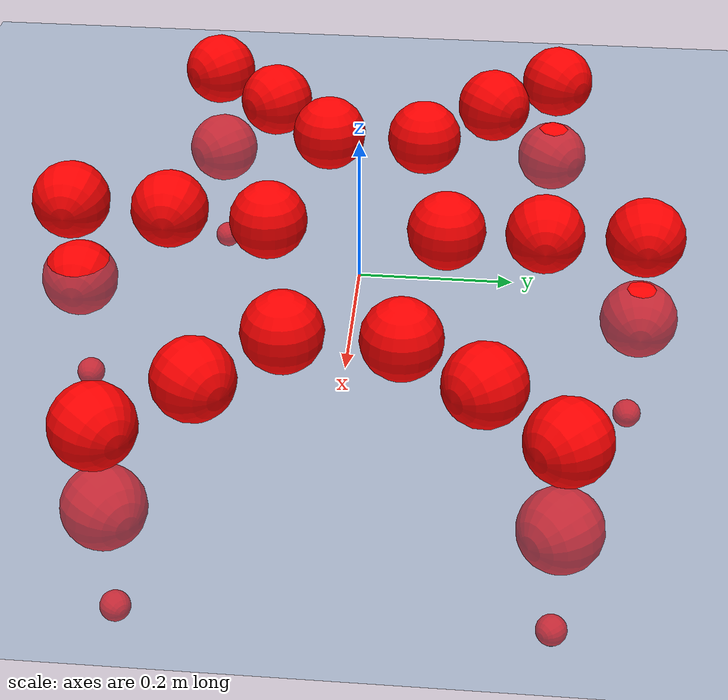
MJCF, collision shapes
<mujoco model="Golem">
  <compiler angle="radian" assetdir="assets" balanceinertia="true" inertiafromgeom="false"/>

  <option timestep="0.005" density="1.2" viscosity="2e-05"/>

  <size nkey="1"/>

  <visual>
    <quality shadowsize="8192"/>
    <map shadowclip="0.5"/>
  </visual>

  <default>
    <default class="/">
      <joint armature="0.01" damping="0.01" frictionloss="0.01"/>
      <geom contype="0" conaffinity="0" group="1" solref="-1000 -80"/>
      <site size="0.01 0.005 0.005" group="5"/>
      <general forcelimited="true" biastype="affine" gainprm="25" biasprm="0 -25 -0.5"/>
      <default class="visual">
        <geom type="mesh" group="2"/>
      </default>
      <default class="collision">
        <geom group="3"/>
      </default>
      <default class="foot">
        <geom size="0.01 0 0" condim="6" group="4" priority="1" solimp="0.015 1 0.01"/>
      </default>
      <default class="reward_collision_sphere">
        <geom group="5" rgba="1 0 0 1"/>
      </default>
    </default>
  </default>

  <asset>
    <texture type="skybox" colorspace="auto" name="//unnamed_texture_0" builtin="gradient" rgb1="0.95 0.95 0.95" rgb2="0.95 0.95 0.95" width="100" height="600"/>
    <texture type="2d" colorspace="auto" name="texplane" builtin="checker" rgb1="0.345 0.575 0.748" rgb2="0.345 0.575 0.748" markrgb="1 1 1" width="512" height="512"/>
    <material name="MatPlane" class="/" texture="texplane" texuniform="true" texrepeat="2 2" specular="0.9"/>
    <mesh name="body" class="/" file="body.stl" scale="0.001 0.001 0.001"/>
    <mesh name="coxa" class="/" file="coxa.stl" scale="0.001 0.001 0.001"/>
    <mesh name="femur" class="/" file="femur.stl" scale="0.001 0.001 0.001"/>
    <mesh name="tibia" class="/" file="tibia.stl" scale="0.001 0.001 0.001"/>
    <mesh name="tarsus" class="/" file="tarsus.stl" scale="0.001 0.001 0.001"/>
  </asset>

  <worldbody>
    <geom name="floor" class="/" size="100 100 0.125" type="plane" group="0" material="MatPlane"/>
    <light name="toplight_shadow" class="/" pos="0 0 5" dir="0.0990148 0.0990148 -0.990148" type="directional" ambient="0.04 0.04 0.04" diffuse="0.55 0.55 0.55" specular="0.12 0.12 0.12"/>
    <light name="toplight_fill" class="/" pos="0 0 5" dir="0.0990148 0.0990148 -0.990148" type="directional" castshadow="false" ambient="0.04 0.04 0.04" diffuse="0.3 0.3 0.3" specular="0.08 0.08 0.08"/>
    <body name="trunk" pos="0.00183259 0.0011248 0.00219629" quat="1 -5.68526e-05 1.41754e-05 -0.000170579">
      <inertial pos="-0.00162496 0.00223514 0.00621837" quat="0.999979 -0.00337727 -0.00315337 0.00460991" mass="7.36659" diaginertia="0.0742173 0.0249816 0.0178014"/>
      <joint name="//unnamed_joint_0" type="free"/>
      <geom name="//unnamed_geom_1" class="/" pos="0 0 0.0723704" quat="1 0 0 0" type="mesh" rgba="0.9 0.9 0.9 1" mesh="body"/>
      <site name="imu" class="/" pos="0.173505 -0.00904081 0.112645" size="0.0127138"/>
      <camera name="track" class="/" pos="0 -2.39053 0" quat="0.707107 0.707107 0 0" mode="trackcom"/>
      <camera name="ego_camera" class="/" pos="0.19345 0 0.113079" quat="-0.5 -0.5 0.5 0.5"/>
      <body name="coxa_RR" pos="-0.264931 -0.0952122 0.0773541" quat="0.383047 7.08764e-05 -0.000366512 -0.923729">
        <inertial pos="0.000161171 0.00218732 0.00114104" quat="1 0.000293037 9.29614e-05 2.3686e-05" mass="0.420265" diaginertia="0.0760952 0.0255288 0.0207103"/>
        <joint name="coxa_joint_RR" class="/" pos="0 0 0" axis="0.00341389 0.0101735 -0.999942" stiffness="0.0104363" range="-3.15304 3.12922" armature="0.0113025" damping="0.0148955" frictionloss="0.0114323"/>
        <geom name="//unnamed_geom_2" class="/" type="mesh" rgba="0.2 0.2 0.2 1" mesh="coxa"/>
        <geom name="//unnamed_geom_3" class="reward_collision_sphere" size="0.0508551" pos="-0.0446424 0 0"/>
        <body name="femur_RR" pos="0.0849659 -0.00724168 -0.0037015" quat="0.499733 -0.500556 0.499883 0.499828">
          <inertial pos="0.00655634 -0.000634738 0.00767979" quat="0.999404 0.00348712 0.0286567 0.0189316" mass="0.429375" diaginertia="0.0755326 0.025064 0.0188072"/>
          <joint name="femur_joint_RR" class="/" pos="0 0 0" axis="0.000106818 0.00060353 -1" range="-3.17338 3.1533" armature="0.0114583" damping="0.0143022" frictionloss="0.0122645"/>
          <geom name="//unnamed_geom_4" class="/" type="mesh" rgba="0.9 0.9 0.9 1" mesh="femur"/>
          <geom name="//unnamed_geom_5" class="reward_collision_sphere" size="0.0508551"/>
          <body name="tibia_RR" pos="-0.000976402 -0.127764 0.00669839" quat="0.000884963 0.999999 -0.000605265 0.000629879">
            <inertial pos="0.000213027 -0.000795835 0.00448611" quat="0.999986 0.00507898 0.000925475 0.00123522" mass="0.371102" diaginertia="0.0636892 0.021137 0.0164732"/>
            <joint name="tibia_joint_RR" class="/" pos="0 0 0" axis="0.0175265 -0.00527625 0.999832" stiffness="0.00877643" range="-3.11507 3.14674" armature="0.0125916" damping="0" frictionloss="0.0147562"/>
            <geom name="//unnamed_geom_6" class="/" type="mesh" rgba="0.2 0.2 0.2 1" mesh="tibia"/>
            <geom name="//unnamed_geom_7" class="reward_collision_sphere" size="0.0508551"/>
            <body name="tarsus_RR" pos="0.134587 -0.000253603 -0.00110631" quat="1 -0.000138899 -0.000106439 0.000157713">
              <inertial pos="0.0900022 0.000675692 0.000951715" quat="0.492507 0.508529 0.475893 0.521882" mass="0.378057" diaginertia="0.07481 0.0252684 0.0177714"/>
              <joint name="tarsus_joint_RR" class="/" pos="0 0 0" axis="-0.0029484 -0.0361741 0.999341" stiffness="0.00227881" range="-3.17307 3.17323" armature="0.0123935" damping="0.0386542" frictionloss="0.0137832"/>
              <geom name="//unnamed_geom_8" class="/" type="mesh" rgba="0.9 0.9 0.9 1" mesh="tarsus"/>
              <geom name="foot_1" class="foot" size="0.0123464" pos="0.166665 0 0" quat="0 -0.707107 0 0.707107"/>
              <geom name="//unnamed_geom_10" class="reward_collision_sphere" size="0.0508551"/>
              <geom name="//unnamed_geom_11" class="reward_collision_sphere" size="0.0190707" pos="0.159968 0 0"/>
              <site name="foot_1" class="foot" pos="0.166665 0 0" quat="0 -0.707107 0 0.707107" size="0.0127138"/>
            </body>
          </body>
        </body>
      </body>
      <body name="coxa_RM" pos="-0.0025914 -0.164187 0.0771028" quat="0.705217 -0.000395265 0.00239242 -0.708987">
        <inertial pos="0.00379948 0.00065574 0.00548014" quat="0.999894 0.0037109 -0.00273478 0.0138155" mass="0.40909" diaginertia="0.0804295 0.0245171 0.0181825"/>
        <joint name="coxa_joint_RM" class="/" pos="0 0 0" axis="0.00791493 0.00444814 -0.999959" range="-3.18198 3.09518" armature="0.0141677" damping="0.00855553" frictionloss="0.0124847"/>
        <geom name="//unnamed_geom_12" class="/" type="mesh" rgba="0.2 0.2 0.2 1" mesh="coxa"/>
        <geom name="//unnamed_geom_13" class="reward_collision_sphere" size="0.0508551" pos="-0.0446424 0 0"/>
        <body name="femur_RM" pos="0.0844422 -0.00258812 0.00816523" quat="0.500391 -0.500856 0.499278 0.499473">
          <inertial pos="-0.00582242 -0.000356149 -0.000133806" quat="0.999475 -0.0272019 -0.00979512 -0.0146509" mass="0.400152" diaginertia="0.07449 0.0254591 0.0179321"/>
          <joint name="femur_joint_RM" class="/" pos="0 0 0" axis="-0.0187845 0.00316899 -0.999819" stiffness="0.00619456" range="-3.11991 3.14988" armature="0.0132968" damping="0.0191766" frictionloss="0.011362"/>
          <geom name="//unnamed_geom_14" class="/" type="mesh" rgba="0.9 0.9 0.9 1" mesh="femur"/>
          <geom name="//unnamed_geom_15" class="reward_collision_sphere" size="0.0508551"/>
          <body name="tibia_RM" pos="-0.00721223 -0.128762 0.00106164" quat="-0.000303842 1 0.000159419 -7.89198e-06">
            <inertial pos="0.00658869 0.000703449 0.00123363" quat="0.999936 -0.000394092 -0.0106594 -0.00370555" mass="0.415474" diaginertia="0.0714684 0.0257765 0.0204165"/>
            <joint name="tibia_joint_RM" class="/" pos="0 0 0" axis="-0.00517188 -0.00847118 0.999951" range="-3.11253 3.12427" armature="0.0123117" damping="0.0176295" frictionloss="0.012168"/>
            <geom name="//unnamed_geom_16" class="/" type="mesh" rgba="0.2 0.2 0.2 1" mesh="tibia"/>
            <geom name="//unnamed_geom_17" class="reward_collision_sphere" size="0.0508551"/>
            <body name="tarsus_RM" pos="0.124642 0.000753151 0.0023499" quat="1 -0.000457983 -0.000748016 3.33649e-06">
              <inertial pos="0.0877849 -0.00127574 -0.0016643" quat="0.504026 0.502482 0.490941 0.502441" mass="0.428647" diaginertia="0.0786172 0.0248548 0.018112"/>
              <joint name="tarsus_joint_RM" class="/" pos="0 0 0" axis="0.00639787 0.0140593 0.999881" range="-3.1016 3.13377" armature="0.0128966" damping="0.0194524" frictionloss="0.0139013"/>
              <geom name="//unnamed_geom_18" class="/" type="mesh" rgba="0.9 0.9 0.9 1" mesh="tarsus"/>
              <geom name="foot_2" class="foot" size="0.0151867" pos="0.166665 0 0" quat="0 -0.707107 0 0.707107"/>
              <geom name="//unnamed_geom_20" class="reward_collision_sphere" size="0.0508551"/>
              <geom name="//unnamed_geom_21" class="reward_collision_sphere" size="0.0190707" pos="0.159968 0 0"/>
              <site name="foot_2" class="foot" pos="0.166665 0 0" quat="0 -0.707107 0 0.707107" size="0.0127138"/>
            </body>
          </body>
        </body>
      </body>
      <body name="coxa_RF" pos="0.264625 -0.103884 0.0728722" quat="0.923734 -1.36624e-05 -0.000204056 -0.383034">
        <inertial pos="0.00734238 0.00259846 0.00204787" quat="0.999786 -0.00594146 -0.0176724 0.00898178" mass="0.371772" diaginertia="0.0724697 0.0263628 0.0188231"/>
        <joint name="coxa_joint_RF" class="/" pos="0 0 0" axis="-0.00014407 0.0101127 -0.999949" stiffness="0.00429493" range="-3.14808 3.13756" armature="0.0109813" damping="0.0104927" frictionloss="0.0119046"/>
        <geom name="//unnamed_geom_22" class="/" type="mesh" rgba="0.2 0.2 0.2 1" mesh="coxa"/>
        <geom name="//unnamed_geom_23" class="reward_collision_sphere" size="0.0508551" pos="-0.0446424 0 0"/>
        <body name="femur_RF" pos="0.0848251 0.000533393 -0.0056934" quat="0.499985 -0.499566 0.500505 0.499943">
          <inertial pos="-0.000960547 -0.00648711 -0.000549282" quat="0.999951 -0.0074455 -0.00149212 -0.00632851" mass="0.418011" diaginertia="0.0708391 0.0254071 0.0178314"/>
          <joint name="femur_joint_RF" class="/" pos="0 0 0" axis="-0.00657801 0.00284269 -0.999974" stiffness="0.0306688" range="-3.09162 3.17787" armature="0.0122374" damping="0.0102434" frictionloss="0.0115371"/>
          <geom name="//unnamed_geom_24" class="/" type="mesh" rgba="0.9 0.9 0.9 1" mesh="femur"/>
          <geom name="//unnamed_geom_25" class="reward_collision_sphere" size="0.0508551"/>
          <body name="tibia_RF" pos="0.000919467 -0.1328 -0.00393982" quat="0.000254159 0.999999 0.000852454 -0.000795403">
            <inertial pos="0.00542536 0.00266453 -0.00444822" quat="0.999989 0.00142427 -0.00318898 0.00298321" mass="0.398224" diaginertia="0.0732172 0.0250167 0.0186878"/>
            <joint name="tibia_joint_RF" class="/" pos="0 0 0" axis="-0.0120354 0.0024171 0.999925" stiffness="0.00536105" range="-3.11021 3.19074" armature="0.0110194" damping="0.0483992" frictionloss="0.0137439"/>
            <geom name="//unnamed_geom_26" class="/" type="mesh" rgba="0.2 0.2 0.2 1" mesh="tibia"/>
            <geom name="//unnamed_geom_27" class="reward_collision_sphere" size="0.0508551"/>
            <body name="tarsus_RF" pos="0.12643 -0.00528639 0.00477074" quat="0.999999 -0.000320641 -0.000959541 -1.3929e-05">
              <inertial pos="0.0857428 0.000215637 -0.00166838" quat="0.493137 0.505704 0.497016 0.504038" mass="0.420158" diaginertia="0.0738506 0.0224639 0.0195177"/>
              <joint name="tarsus_joint_RF" class="/" pos="0 0 0" axis="0.00101718 -0.00043735 0.999999" range="-3.13051 3.12846" armature="0.0105109" damping="0.000471511" frictionloss="0.00799868"/>
              <geom name="//unnamed_geom_28" class="/" type="mesh" rgba="0.9 0.9 0.9 1" mesh="tarsus"/>
              <geom name="foot_3" class="foot" size="0.00995194" pos="0.166665 0 0" quat="0 -0.707107 0 0.707107"/>
              <geom name="//unnamed_geom_30" class="reward_collision_sphere" size="0.0508551"/>
              <geom name="//unnamed_geom_31" class="reward_collision_sphere" size="0.0190707" pos="0.159968 0 0"/>
              <site name="foot_3" class="foot" pos="0.166665 0 0" quat="0 -0.707107 0 0.707107" size="0.0127138"/>
            </body>
          </body>
        </body>
      </body>
      <body name="coxa_LR" pos="-0.265382 0.101101 0.0763127" quat="0.383808 -0.00187748 0.00140414 0.92341">
        <inertial pos="-0.00210897 0.00185685 0.00694588" quat="0.999869 -0.012857 0.00439192 -0.00877137" mass="0.475451" diaginertia="0.0803305 0.0271602 0.0209461"/>
        <joint name="coxa_joint_LR" class="/" pos="0 0 0" axis="-0.00296661 0.00533388 -0.999981" range="-3.1703 2.99776" armature="0.0106181" damping="0.0143241" frictionloss="0.0171691"/>
        <geom name="//unnamed_geom_32" class="/" type="mesh" rgba="0.2 0.2 0.2 1" mesh="coxa"/>
        <geom name="//unnamed_geom_33" class="reward_collision_sphere" size="0.0508551" pos="-0.0446424 0 0"/>
        <body name="femur_LR" pos="0.0876026 -0.00142609 0.00533598" quat="0.49926 -0.499426 0.50056 0.500752">
          <inertial pos="-0.00120422 -0.00219294 -0.00174227" quat="0.99999 0.00376708 -0.0024789 -0.00052211" mass="0.415811" diaginertia="0.073151 0.0223299 0.0191293"/>
          <joint name="femur_joint_LR" class="/" pos="0 0 0" axis="-0.00383596 -0.00197308 0.999991" stiffness="0.0113574" range="-3.10282 3.20276" armature="0.0115014" damping="0.0140129" frictionloss="0.0117343"/>
          <geom name="//unnamed_geom_34" class="/" type="mesh" rgba="0.9 0.9 0.9 1" mesh="femur"/>
          <geom name="//unnamed_geom_35" class="reward_collision_sphere" size="0.0508551"/>
          <body name="tibia_LR" pos="0.00398773 -0.128521 -0.000756808" quat="-0.000324176 0.999999 -0.000191626 -0.00158051">
            <inertial pos="-0.00160876 -0.00606727 0.00019195" quat="0.999844 -0.0127228 -0.00108812 0.0121881" mass="0.414704" diaginertia="0.0647807 0.022702 0.0196712"/>
            <joint name="tibia_joint_LR" class="/" pos="0 0 0" axis="-0.00263265 -0.00798063 -0.999965" range="-3.14131 3.15138" armature="0.0136237" damping="0" frictionloss="0.0121773"/>
            <geom name="//unnamed_geom_36" class="/" type="mesh" rgba="0.2 0.2 0.2 1" mesh="tibia"/>
            <geom name="//unnamed_geom_37" class="reward_collision_sphere" size="0.0508551"/>
            <body name="tarsus_LR" pos="0.125828 0.0001612 0.000236712" quat="1 5.58427e-05 4.62906e-05 -0.000118323">
              <inertial pos="0.089344 0.00162873 -0.00121775" quat="0.49991 0.499967 0.499796 0.500326" mass="0.439855" diaginertia="0.0779975 0.0268138 0.0202595"/>
              <joint name="tarsus_joint_LR" class="/" pos="0 0 0" axis="0.00553871 0.00125599 -0.999984" range="-3.18519 3.09819" armature="0.0174685" damping="0.0381733" frictionloss="0.0119978"/>
              <geom name="//unnamed_geom_38" class="/" type="mesh" rgba="0.9 0.9 0.9 1" mesh="tarsus"/>
              <geom name="foot_4" class="foot" size="0.0138341" pos="0.166665 0 0" quat="0.707107 0 -0.707107 0"/>
              <geom name="//unnamed_geom_40" class="reward_collision_sphere" size="0.0508551"/>
              <geom name="//unnamed_geom_41" class="reward_collision_sphere" size="0.0190707" pos="0.159968 0 0"/>
              <site name="foot_4" class="foot" pos="0.166665 0 0" quat="0.707107 0 -0.707107 0" size="0.0127138"/>
            </body>
          </body>
        </body>
      </body>
      <body name="coxa_LM" pos="0.00230906 0.155761 0.0762271" quat="0.705613 -0.0016169 0.0030745 0.708589">
        <inertial pos="-0.00408756 0.00509184 0.0011862" quat="0.999803 -0.01123 -0.0163416 0.000151868" mass="0.404262" diaginertia="0.075783 0.0249308 0.018193"/>
        <joint name="coxa_joint_LM" class="/" pos="0 0 0" axis="-0.00294631 0.00784844 -0.999965" range="-3.15059 3.13833" armature="0.00819048" damping="0.010343" frictionloss="0.0135791"/>
        <geom name="//unnamed_geom_42" class="/" type="mesh" rgba="0.2 0.2 0.2 1" mesh="coxa"/>
        <geom name="//unnamed_geom_43" class="reward_collision_sphere" size="0.0508551" pos="-0.0446424 0 0"/>
        <body name="femur_LM" pos="0.0811013 -0.000489335 0.0030602" quat="0.500101 -0.499534 0.499266 0.501097">
          <inertial pos="0.00377775 -9.52836e-05 0.00520241" quat="0.999985 -0.00195793 -0.00178974 0.0048061" mass="0.374092" diaginertia="0.0689365 0.024321 0.0178597"/>
          <joint name="femur_joint_LM" class="/" pos="0 0 0" axis="-0.0107228 0.00589672 0.999925" range="-3.17102 3.17311" armature="0.0115168" damping="0.00429417" frictionloss="0.0126675"/>
          <geom name="//unnamed_geom_44" class="/" type="mesh" rgba="0.9 0.9 0.9 1" mesh="femur"/>
          <geom name="//unnamed_geom_45" class="reward_collision_sphere" size="0.0508551"/>
          <body name="tibia_LM" pos="-0.00216988 -0.12724 0.00025249" quat="0.000421507 1 0.000398201 -0.000191355">
            <inertial pos="-0.00664171 -0.00725727 -0.00765446" quat="1 -8.84128e-05 8.66334e-06 5.43823e-05" mass="0.405696" diaginertia="0.0713658 0.0253813 0.0174945"/>
            <joint name="tibia_joint_LM" class="/" pos="0 0 0" axis="-0.00440947 8.43519e-05 -0.99999" stiffness="0.0164585" range="-3.10491 3.13531" armature="0.0114047" damping="0.00580235" frictionloss="0.0147037"/>
            <geom name="//unnamed_geom_46" class="/" type="mesh" rgba="0.2 0.2 0.2 1" mesh="tibia"/>
            <geom name="//unnamed_geom_47" class="reward_collision_sphere" size="0.0508551"/>
            <body name="tarsus_LM" pos="0.130044 0.00426604 -0.00360811" quat="1 0.000696721 -0.000412835 0.00038706">
              <inertial pos="0.0902078 0.000796053 -0.00137009" quat="0.504108 0.50449 0.491069 0.500216" mass="0.377275" diaginertia="0.0717266 0.0200404 0.016824"/>
              <joint name="tarsus_joint_LM" class="/" pos="0 0 0" axis="-0.0174815 0.00644453 -0.999826" range="-2.97191 3.18605" armature="0.0125235" damping="0" frictionloss="0.0122559"/>
              <geom name="//unnamed_geom_48" class="/" type="mesh" rgba="0.9 0.9 0.9 1" mesh="tarsus"/>
              <geom name="foot_5" class="foot" size="0.0128263" pos="0.166665 0 0" quat="0.707107 0 -0.707107 0"/>
              <geom name="//unnamed_geom_50" class="reward_collision_sphere" size="0.0508551"/>
              <geom name="//unnamed_geom_51" class="reward_collision_sphere" size="0.0190707" pos="0.159968 0 0"/>
              <site name="foot_5" class="foot" pos="0.166665 0 0" quat="0.707107 0 -0.707107 0" size="0.0127138"/>
            </body>
          </body>
        </body>
      </body>
      <body name="coxa_LF" pos="0.262269 0.100584 0.0697494" quat="0.92359 0.00173206 -0.00194643 0.383372">
        <inertial pos="0.00101322 -0.00693035 -0.000823906" quat="0.999971 0.00359625 0.00343663 -0.00576229" mass="0.391363" diaginertia="0.0676647 0.0213397 0.0169365"/>
        <joint name="coxa_joint_LF" class="/" pos="0 0 0" axis="0.00707867 -0.00138687 -0.999974" stiffness="0.00553719" range="-3.15278 3.17971" armature="0.00782672" damping="0.018859" frictionloss="0.0137163"/>
        <geom name="//unnamed_geom_52" class="/" type="mesh" rgba="0.2 0.2 0.2 1" mesh="coxa"/>
        <geom name="//unnamed_geom_53" class="reward_collision_sphere" size="0.0508551" pos="-0.0446424 0 0"/>
        <body name="femur_LF" pos="0.0878826 0.00872322 0.00616033" quat="0.499511 -0.49948 0.501595 0.499411">
          <inertial pos="-0.00208683 -0.00243753 -0.0076114" quat="0.999717 -0.0066439 -0.0183021 -0.0136491" mass="0.42173" diaginertia="0.074295 0.021972 0.0180078"/>
          <joint name="femur_joint_LF" class="/" pos="0 0 0" axis="0.0166252 0.00432237 0.999852" stiffness="0.0234701" range="-3.14601 3.26825" armature="0.0125851" damping="0.0117729" frictionloss="0.0139355"/>
          <geom name="//unnamed_geom_54" class="/" type="mesh" rgba="0.9 0.9 0.9 1" mesh="femur"/>
          <geom name="//unnamed_geom_55" class="reward_collision_sphere" size="0.0508551"/>
          <body name="tibia_LF" pos="0.00286308 -0.128392 0.00337985" quat="0.000311692 0.999997 -0.00219073 0.00108634">
            <inertial pos="0.0020519 0.00607701 6.04756e-05" quat="0.999936 0.0028662 0.00918103 0.00590361" mass="0.403928" diaginertia="0.0734319 0.0243341 0.0181412"/>
            <joint name="tibia_joint_LF" class="/" pos="0 0 0" axis="-0.00289111 0.0199551 -0.999797" range="-3.05572 3.1767" armature="0.0116547" damping="0.0155148" frictionloss="0.00922894"/>
            <geom name="//unnamed_geom_56" class="/" type="mesh" rgba="0.2 0.2 0.2 1" mesh="tibia"/>
            <geom name="//unnamed_geom_57" class="reward_collision_sphere" size="0.0508551"/>
            <body name="tarsus_LF" pos="0.130139 -0.00201658 -0.000590424" quat="0.999992 -0.0025039 -0.000742546 -0.00298936">
              <inertial pos="0.0912028 -0.00101626 -0.00112825" quat="0.501131 0.492016 0.500292 0.506455" mass="0.404329" diaginertia="0.077637 0.0256577 0.020231"/>
              <joint name="tarsus_joint_LF" class="/" pos="0 0 0" axis="0.0340037 -0.0172996 -0.999272" stiffness="0.00890157" range="-3.11923 3.22047" armature="0.0133511" damping="0.041061" frictionloss="0.012485"/>
              <geom name="//unnamed_geom_58" class="/" type="mesh" rgba="0.9 0.9 0.9 1" mesh="tarsus"/>
              <geom name="foot_6" class="foot" size="0.0146848" pos="0.166665 0 0" quat="0.707107 0 -0.707107 0"/>
              <geom name="//unnamed_geom_60" class="reward_collision_sphere" size="0.0508551"/>
              <geom name="//unnamed_geom_61" class="reward_collision_sphere" size="0.0190707" pos="0.159968 0 0"/>
              <site name="foot_6" class="foot" pos="0.166665 0 0" quat="0.707107 0 -0.707107 0" size="0.0127138"/>
            </body>
          </body>
        </body>
      </body>
    </body>
  </worldbody>

  <contact>
    <pair class="/" geom1="floor" geom2="foot_1" name="//unnamed_contact_0"/>
    <pair class="/" geom1="floor" geom2="foot_2" name="//unnamed_contact_1"/>
    <pair class="/" geom1="floor" geom2="foot_3" name="//unnamed_contact_2"/>
    <pair class="/" geom1="floor" geom2="foot_4" name="//unnamed_contact_3"/>
    <pair class="/" geom1="floor" geom2="foot_5" name="//unnamed_contact_4"/>
    <pair class="/" geom1="floor" geom2="foot_6" name="//unnamed_contact_5"/>
  </contact>

  <actuator>
    <general name="coxa_joint_RR" class="/" joint="coxa_joint_RR" forcerange="-11.4347 11.4347" gainprm="30.7074" biasprm="0 -30.7074 -0.654965"/>
    <general name="femur_joint_RR" class="/" joint="femur_joint_RR" forcerange="-9.28146 9.28146" gainprm="30.7074" biasprm="0 -30.7074 -0.654965"/>
    <general name="tibia_joint_RR" class="/" joint="tibia_joint_RR" forcerange="-11.8123 11.8123" gainprm="30.7074" biasprm="0 -30.7074 -0.654965"/>
    <general name="tarsus_joint_RR" class="/" joint="tarsus_joint_RR" forcerange="-9.02388 9.02388" gainprm="30.7074" biasprm="0 -30.7074 -0.654965"/>
    <general name="coxa_joint_RM" class="/" joint="coxa_joint_RM" forcerange="-9.34645 9.34645" gainprm="30.7074" biasprm="0 -30.7074 -0.654965"/>
    <general name="femur_joint_RM" class="/" joint="femur_joint_RM" forcerange="-9.25255 9.25255" gainprm="30.7074" biasprm="0 -30.7074 -0.654965"/>
    <general name="tibia_joint_RM" class="/" joint="tibia_joint_RM" forcerange="-11.0834 11.0834" gainprm="30.7074" biasprm="0 -30.7074 -0.654965"/>
    <general name="tarsus_joint_RM" class="/" joint="tarsus_joint_RM" forcerange="-6.88899 6.88899" gainprm="30.7074" biasprm="0 -30.7074 -0.654965"/>
    <general name="coxa_joint_RF" class="/" joint="coxa_joint_RF" forcerange="-9.99929 9.99929" gainprm="30.7074" biasprm="0 -30.7074 -0.654965"/>
    <general name="femur_joint_RF" class="/" joint="femur_joint_RF" forcerange="-8.88617 8.88617" gainprm="30.7074" biasprm="0 -30.7074 -0.654965"/>
    <general name="tibia_joint_RF" class="/" joint="tibia_joint_RF" forcerange="-7.23333 7.23333" gainprm="30.7074" biasprm="0 -30.7074 -0.654965"/>
    <general name="tarsus_joint_RF" class="/" joint="tarsus_joint_RF" forcerange="-9.34382 9.34382" gainprm="30.7074" biasprm="0 -30.7074 -0.654965"/>
    <general name="coxa_joint_LR" class="/" joint="coxa_joint_LR" forcerange="-9.16771 9.16771" gainprm="30.7074" biasprm="0 -30.7074 -0.654965"/>
    <general name="femur_joint_LR" class="/" joint="femur_joint_LR" forcerange="-10.6383 10.6383" gainprm="30.7074" biasprm="0 -30.7074 -0.654965"/>
    <general name="tibia_joint_LR" class="/" joint="tibia_joint_LR" forcerange="-9.19007 9.19007" gainprm="30.7074" biasprm="0 -30.7074 -0.654965"/>
    <general name="tarsus_joint_LR" class="/" joint="tarsus_joint_LR" forcerange="-9.98079 9.98079" gainprm="30.7074" biasprm="0 -30.7074 -0.654965"/>
    <general name="coxa_joint_LM" class="/" joint="coxa_joint_LM" forcerange="-9.19261 9.19261" gainprm="30.7074" biasprm="0 -30.7074 -0.654965"/>
    <general name="femur_joint_LM" class="/" joint="femur_joint_LM" forcerange="-8.69982 8.69982" gainprm="30.7074" biasprm="0 -30.7074 -0.654965"/>
    <general name="tibia_joint_LM" class="/" joint="tibia_joint_LM" forcerange="-10.2397 10.2397" gainprm="30.7074" biasprm="0 -30.7074 -0.654965"/>
    <general name="tarsus_joint_LM" class="/" joint="tarsus_joint_LM" forcerange="-8.54622 8.54622" gainprm="30.7074" biasprm="0 -30.7074 -0.654965"/>
    <general name="coxa_joint_LF" class="/" joint="coxa_joint_LF" forcerange="-8.93527 8.93527" gainprm="30.7074" biasprm="0 -30.7074 -0.654965"/>
    <general name="femur_joint_LF" class="/" joint="femur_joint_LF" forcerange="-9.92875 9.92875" gainprm="30.7074" biasprm="0 -30.7074 -0.654965"/>
    <general name="tibia_joint_LF" class="/" joint="tibia_joint_LF" forcerange="-8.5381 8.5381" gainprm="30.7074" biasprm="0 -30.7074 -0.654965"/>
    <general name="tarsus_joint_LF" class="/" joint="tarsus_joint_LF" forcerange="-9.14349 9.14349" gainprm="30.7074" biasprm="0 -30.7074 -0.654965"/>
  </actuator>

  <sensor>
    <gyro site="imu" name="imu_angular_velocity"/>
    <velocimeter site="imu" name="imu_linear_velocity"/>
    <framelinvel objtype="site" objname="foot_1" name="foot_1_global_linear_velocity"/>
    <framelinvel objtype="site" objname="foot_2" name="foot_2_global_linear_velocity"/>
    <framelinvel objtype="site" objname="foot_3" name="foot_3_global_linear_velocity"/>
    <framelinvel objtype="site" objname="foot_4" name="foot_4_global_linear_velocity"/>
    <framelinvel objtype="site" objname="foot_5" name="foot_5_global_linear_velocity"/>
    <framelinvel objtype="site" objname="foot_6" name="foot_6_global_linear_velocity"/>
  </sensor>

  <keyframe>
    <key name="home" qpos="0 0 0.1457 1 0 0 0 0 0 0 0 0 0 0 0 0 0 0 0 0 0 0 0 0 0 0 0 0 0 0 0"/>
  </keyframe>
</mujoco>
